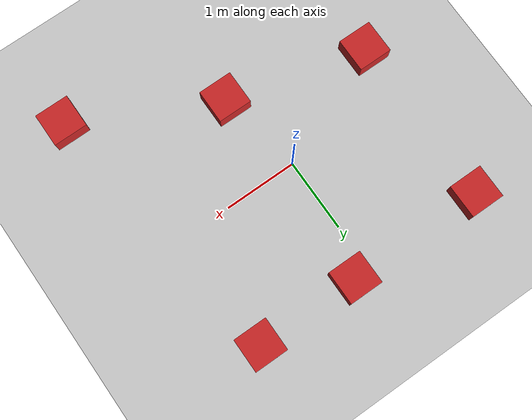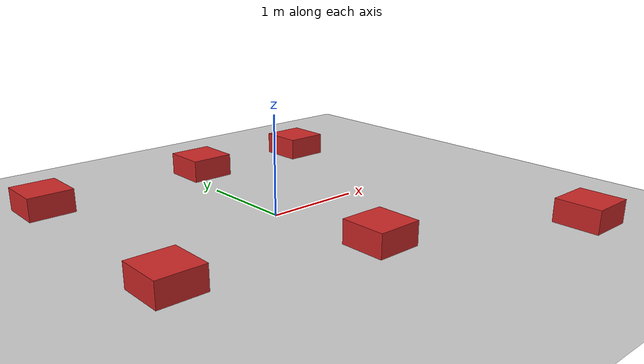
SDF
<sdf version="1.6">
 <world name="default">
  <include><uri>model://ground_plane</uri></include>
  <include><uri>model://sun</uri></include>
  <scene><shadows>false</shadows></scene>
  <physics type="ode">
   <real_time_update_rate>1000.0</real_time_update_rate>
   <max_step_size>0.001</max_step_size>
   <real_time_factor>1</real_time_factor>
   <ode>
    <solver>
     <type>quick</type>
     <iters>150</iters>
     <precon_iters>0</precon_iters>
     <sor>1.400000</sor>
     <use_dynamic_moi_rescaling>1</use_dynamic_moi_rescaling>
    </solver>
    <constraints>
     <cfm>0.00001</cfm>
     <erp>0.2</erp>
     <contact_max_correcting_vel>2000.000000</contact_max_correcting_vel>
     <contact_surface_layer>0.01000</contact_surface_layer>
    </constraints>
   </ode>
  </physics>
  <model name="red_cube_1">
   <static>true</static>
   <pose>2.115 -2.115 0 0 0 0</pose>
   <link name="link">
    <collision name="collision"><geometry><box><size>0.47 0.47 0.47</size></box></geometry></collision>
    <visual name="visual">
     <geometry><box><size>0.47 0.47 0.47</size></box></geometry>
     <material>
      <script><name>Gazebo/Red</name><uri>file://media/materials/scripts/gazebo.material</uri></script>
     </material>
    </visual>
   </link>
  </model>
  <model name="red_cube_2">
   <static>true</static>
   <pose>0.23 -1.175 0 0 0 0</pose>
   <link name="link">
    <collision name="collision"><geometry><box><size>0.47 0.47 0.47</size></box></geometry></collision>
    <visual name="visual">
     <geometry><box><size>0.47 0.47 0.47</size></box></geometry>
     <material>
      <script><name>Gazebo/Red</name><uri>file://media/materials/scripts/gazebo.material</uri></script>
     </material>
    </visual>
   </link>
  </model>
  <model name="red_cube_3">
   <static>true</static>
   <pose>0.23 1.645 0 0 0 0</pose>
   <link name="link">
    <collision name="collision"><geometry><box><size>0.47 0.47 0.47</size></box></geometry></collision>
    <visual name="visual">
     <geometry><box><size>0.47 0.47 0.47</size></box></geometry>
     <material>
      <script><name>Gazebo/Red</name><uri>file://media/materials/scripts/gazebo.material</uri></script>
     </material>
    </visual>
   </link>
  </model>
  <model name="red_cube_4">
   <static>true</static>
   <pose>1.645 1.645 0 0 0 0</pose>
   <link name="link">
    <collision name="collision"><geometry><box><size>0.47 0.47 0.47</size></box></geometry></collision>
    <visual name="visual">
     <geometry><box><size>0.47 0.47 0.47</size></box></geometry>
     <material>
      <script><name>Gazebo/Red</name><uri>file://media/materials/scripts/gazebo.material</uri></script>
     </material>
    </visual>
   </link>
  </model>
  <model name="red_cube_5">
   <static>true</static>
   <pose>-1.645 1.645 0 0 0 0</pose>
   <link name="link">
    <collision name="collision"><geometry><box><size>0.47 0.47 0.47</size></box></geometry></collision>
    <visual name="visual">
     <geometry><box><size>0.47 0.47 0.47</size></box></geometry>
     <material>
      <script><name>Gazebo/Red</name><uri>file://media/materials/scripts/gazebo.material</uri></script>
     </material>
    </visual>
   </link>
  </model>
  <model name="red_cube_6">
   <static>true</static>
   <pose>-1.645 -0.705 0 0 0 0</pose>
   <link name="link">
    <collision name="collision"><geometry><box><size>0.47 0.47 0.47</size></box></geometry></collision>
    <visual name="visual">
     <geometry><box><size>0.47 0.47 0.47</size></box></geometry>
     <material>
      <script><name>Gazebo/Red</name><uri>file://media/materials/scripts/gazebo.material</uri></script>
     </material>
    </visual>
   </link>
  </model>
 </world>
</sdf>
